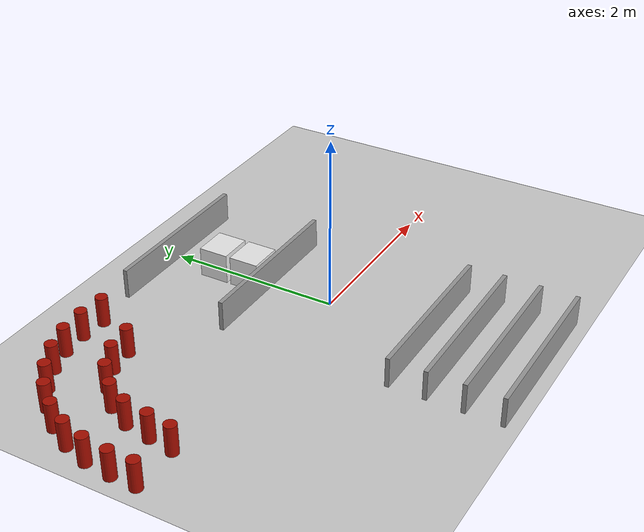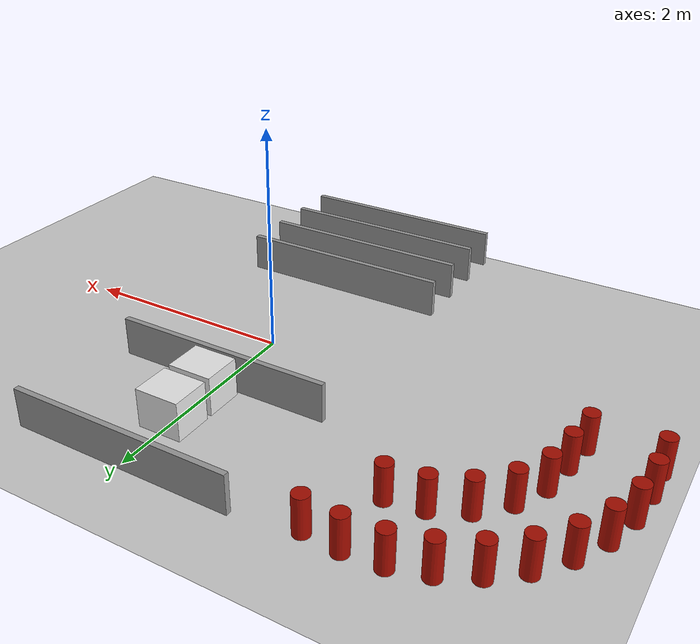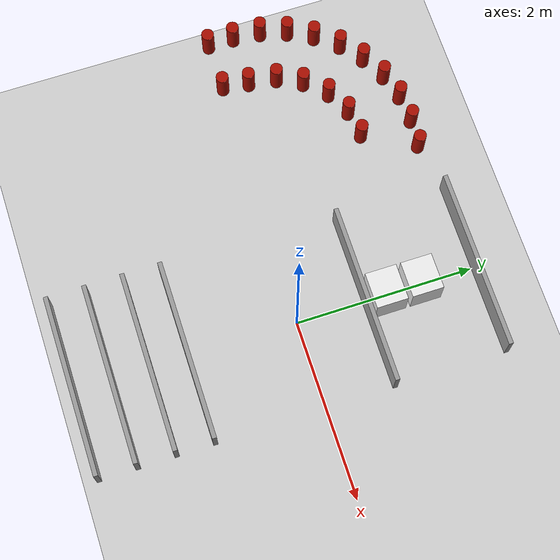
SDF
<?xml version="1.0" ?>
<sdf version="1.5">
  <world name="default">
    <include>
      <uri>model://sun</uri>
    </include>

    <include>
      <uri>model://limo_track_base</uri>
    </include>

    <model name="wall_1">
      <static>true</static>
      <link name="link">
        <collision name="collision"><geometry><box><size>2 0.05 0.35</size></box></geometry></collision>
        <visual name="visual"><geometry><box><size>2 0.05 0.35</size></box></geometry>
          <material><script><uri>file://media/materials/scripts/gazebo.material</uri><name>Gazebo/Grey</name></script></material>
        </visual>
      </link>
      <pose>0 -2.48 0.175 0 0 0</pose> </model>

    <model name="wall_2">
      <static>true</static>
      <link name="link">
        <collision name="collision"><geometry><box><size>2 0.05 0.35</size></box></geometry></collision>
        <visual name="visual"><geometry><box><size>2 0.05 0.35</size></box></geometry>
          <material><script><uri>file://media/materials/scripts/gazebo.material</uri><name>Gazebo/Grey</name></script></material>
        </visual>
      </link>
      <pose>0 -2.06 0.175 0 0 0</pose> </model>

    <model name="wall_3">
      <static>true</static>
      <link name="link">
        <collision name="collision"><geometry><box><size>2 0.05 0.35</size></box></geometry></collision>
        <visual name="visual"><geometry><box><size>2 0.05 0.35</size></box></geometry>
          <material><script><uri>file://media/materials/scripts/gazebo.material</uri><name>Gazebo/Grey</name></script></material>
        </visual>
      </link>
      <pose>0 -1.64 0.175 0 0 0</pose> </model>

    <model name="wall_4">
      <static>true</static>
      <link name="link">
        <collision name="collision"><geometry><box><size>2 0.05 0.35</size></box></geometry></collision>
        <visual name="visual"><geometry><box><size>2 0.05 0.35</size></box></geometry>
          <material><script><uri>file://media/materials/scripts/gazebo.material</uri><name>Gazebo/Grey</name></script></material>
        </visual>
      </link>
      <pose>0 -1.22 0.175 0 0 0</pose> </model>

    <model name="wall_5">
      <static>true</static>
      <link name="link">
        <collision name="collision"><geometry><box><size>2 0.05 0.35</size></box></geometry></collision>
        <visual name="visual"><geometry><box><size>2 0.05 0.35</size></box></geometry>
          <material><script><uri>file://media/materials/scripts/gazebo.material</uri><name>Gazebo/Grey</name></script></material>
        </visual>
      </link>
      <pose>0 0.77 0.175 0 0 0</pose> </model>

    <model name="wall_6">
      <static>true</static>
      <link name="link">
        <collision name="collision"><geometry><box><size>2 0.05 0.35</size></box></geometry></collision>
        <visual name="visual"><geometry><box><size>2 0.05 0.35</size></box></geometry>
          <material><script><uri>file://media/materials/scripts/gazebo.material</uri><name>Gazebo/Grey</name></script></material>
        </visual>
      </link>
      <pose>0 2.03 0.175 0 0 0</pose> </model>

    <model name="mission_box_1">
      <static>true</static>
      <link name="link">
        <collision name="collision"><geometry><box><size>0.4 0.35 0.35</size></box></geometry></collision>
        <visual name="visual"><geometry><box><size>0.4 0.35 0.35</size></box></geometry>
          <material><script><uri>file://media/materials/scripts/gazebo.material</uri><name>Gazebo/White</name></script></material>
        </visual>
      </link>
      <pose>0 1 0.175 0 0 0</pose> </model>

    <model name="mission_box_2">
      <static>true</static>
      <link name="link">
        <collision name="collision"><geometry><box><size>0.4 0.35 0.35</size></box></geometry></collision>
        <visual name="visual"><geometry><box><size>0.4 0.35 0.35</size></box></geometry>
          <material><script><uri>file://media/materials/scripts/gazebo.material</uri><name>Gazebo/White</name></script></material>
        </visual>
      </link>
      <pose>0 1.4 0.175 0 0 0</pose> </model>

    <model name="cone_1">
      <static>true</static>
      <link name="link">
        <collision name="collision"><geometry><cylinder><radius>0.07</radius><length>0.35</length></cylinder></geometry></collision>
        <visual name="visual"><geometry><cylinder><radius>0.07</radius><length>0.35</length></cylinder></geometry>
          <material><ambient>0.65 0.05 0 1</ambient><diffuse>0.65 0.05 0 1</diffuse></material>
        </visual>
      </link>
      <pose>-2.89 0.065 0.175 0 0 0</pose> </model>

    <model name="cone_2">
      <static>true</static>
      <link name="link">
        <collision name="collision"><geometry><cylinder><radius>0.07</radius><length>0.35</length></cylinder></geometry></collision>
        <visual name="visual"><geometry><cylinder><radius>0.07</radius><length>0.35</length></cylinder></geometry>
          <material><ambient>0.65 0.05 0 1</ambient><diffuse>0.65 0.05 0 1</diffuse></material>
        </visual>
      </link>
      <pose>-2.85 0.36 0.175 0 0 0</pose> </model>

    <model name="cone_3">
      <static>true</static>
      <link name="link">
        <collision name="collision"><geometry><cylinder><radius>0.07</radius><length>0.35</length></cylinder></geometry></collision>
        <visual name="visual"><geometry><cylinder><radius>0.07</radius><length>0.35</length></cylinder></geometry>
          <material><ambient>0.65 0.05 0 1</ambient><diffuse>0.65 0.05 0 1</diffuse></material>
        </visual>
      </link>
      <pose>-2.8 0.675 0.175 0 0 0</pose> </model>

    <model name="cone_4">
      <static>true</static>
      <link name="link">
        <collision name="collision"><geometry><cylinder><radius>0.07</radius><length>0.35</length></cylinder></geometry></collision>
        <visual name="visual"><geometry><cylinder><radius>0.07</radius><length>0.35</length></cylinder></geometry>
          <material><ambient>0.65 0.05 0 1</ambient><diffuse>0.65 0.05 0 1</diffuse></material>
        </visual>
      </link>
      <pose>-2.66 0.95 0.175 0 0 0</pose> </model>

    <model name="cone_5">
      <static>true</static>
      <link name="link">
        <collision name="collision"><geometry><cylinder><radius>0.07</radius><length>0.35</length></cylinder></geometry></collision>
        <visual name="visual"><geometry><cylinder><radius>0.07</radius><length>0.35</length></cylinder></geometry>
          <material><ambient>0.65 0.05 0 1</ambient><diffuse>0.65 0.05 0 1</diffuse></material>
        </visual>
      </link>
      <pose>-2.44 1.18 0.175 0 0 0</pose> </model>

    <model name="cone_6">
      <static>true</static>
      <link name="link">
        <collision name="collision"><geometry><cylinder><radius>0.07</radius><length>0.35</length></cylinder></geometry></collision>
        <visual name="visual"><geometry><cylinder><radius>0.07</radius><length>0.35</length></cylinder></geometry>
          <material><ambient>0.65 0.05 0 1</ambient><diffuse>0.65 0.05 0 1</diffuse></material>
        </visual>
      </link>
      <pose>-2.16 1.32 0.175 0 0 0</pose> </model>

    <model name="cone_7">
      <static>true</static>
      <link name="link">
        <collision name="collision"><geometry><cylinder><radius>0.07</radius><length>0.35</length></cylinder></geometry></collision>
        <visual name="visual"><geometry><cylinder><radius>0.07</radius><length>0.35</length></cylinder></geometry>
          <material><ambient>0.65 0.05 0 1</ambient><diffuse>0.65 0.05 0 1</diffuse></material>
        </visual>
      </link>
      <pose>-1.85 1.365 0.175 0 0 0</pose> </model>

    <model name="cone_8">
      <static>true</static>
      <link name="link">
        <collision name="collision"><geometry><cylinder><radius>0.07</radius><length>0.35</length></cylinder></geometry></collision>
        <visual name="visual"><geometry><cylinder><radius>0.07</radius><length>0.35</length></cylinder></geometry>
          <material><ambient>0.65 0.05 0 1</ambient><diffuse>0.65 0.05 0 1</diffuse></material>
        </visual>
      </link>
      <pose>-3.45 0.065 0.175 0 0 0</pose> </model>

    <model name="cone_9">
      <static>true</static>
      <link name="link">
        <collision name="collision"><geometry><cylinder><radius>0.07</radius><length>0.35</length></cylinder></geometry></collision>
        <visual name="visual"><geometry><cylinder><radius>0.07</radius><length>0.35</length></cylinder></geometry>
          <material><ambient>0.65 0.05 0 1</ambient><diffuse>0.65 0.05 0 1</diffuse></material>
        </visual>
      </link>
      <pose>-3.45 0.36 0.175 0 0 0</pose> </model>

    <model name="cone_10">
      <static>true</static>
      <link name="link">
        <collision name="collision"><geometry><cylinder><radius>0.07</radius><length>0.35</length></cylinder></geometry></collision>
        <visual name="visual"><geometry><cylinder><radius>0.07</radius><length>0.35</length></cylinder></geometry>
          <material><ambient>0.65 0.05 0 1</ambient><diffuse>0.65 0.05 0 1</diffuse></material>
        </visual>
      </link>
      <pose>-3.42 0.675 0.175 0 0 0</pose> </model>

    <model name="cone_11">
      <static>true</static>
      <link name="link">
        <collision name="collision"><geometry><cylinder><radius>0.07</radius><length>0.35</length></cylinder></geometry></collision>
        <visual name="visual"><geometry><cylinder><radius>0.07</radius><length>0.35</length></cylinder></geometry>
          <material><ambient>0.65 0.05 0 1</ambient><diffuse>0.65 0.05 0 1</diffuse></material>
        </visual>
      </link>
      <pose>-3.33 0.975 0.175 0 0 0</pose> </model>

    <model name="cone_12">
      <static>true</static>
      <link name="link">
        <collision name="collision"><geometry><cylinder><radius>0.07</radius><length>0.35</length></cylinder></geometry></collision>
        <visual name="visual"><geometry><cylinder><radius>0.07</radius><length>0.35</length></cylinder></geometry>
          <material><ambient>0.65 0.05 0 1</ambient><diffuse>0.65 0.05 0 1</diffuse></material>
        </visual>
      </link>
      <pose>-3.18 1.25 0.175 0 0 0</pose> </model>

    <model name="cone_13">
      <static>true</static>
      <link name="link">
        <collision name="collision"><geometry><cylinder><radius>0.07</radius><length>0.35</length></cylinder></geometry></collision>
        <visual name="visual"><geometry><cylinder><radius>0.07</radius><length>0.35</length></cylinder></geometry>
          <material><ambient>0.65 0.05 0 1</ambient><diffuse>0.65 0.05 0 1</diffuse></material>
        </visual>
      </link>
      <pose>-2.98 1.5 0.175 0 0 0</pose> </model>

    <model name="cone_14">
      <static>true</static>
      <link name="link">
        <collision name="collision"><geometry><cylinder><radius>0.07</radius><length>0.35</length></cylinder></geometry></collision>
        <visual name="visual"><geometry><cylinder><radius>0.07</radius><length>0.35</length></cylinder></geometry>
          <material><ambient>0.65 0.05 0 1</ambient><diffuse>0.65 0.05 0 1</diffuse></material>
        </visual>
      </link>
      <pose>-2.74 1.695 0.175 0 0 0</pose> </model>

    <model name="cone_15">
      <static>true</static>
      <link name="link">
        <collision name="collision"><geometry><cylinder><radius>0.07</radius><length>0.35</length></cylinder></geometry></collision>
        <visual name="visual"><geometry><cylinder><radius>0.07</radius><length>0.35</length></cylinder></geometry>
          <material><ambient>0.65 0.05 0 1</ambient><diffuse>0.65 0.05 0 1</diffuse></material>
        </visual>
      </link>
      <pose>-2.46 1.845 0.175 0 0 0</pose> </model>

    <model name="cone_16">
      <static>true</static>
      <link name="link">
        <collision name="collision"><geometry><cylinder><radius>0.07</radius><length>0.35</length></cylinder></geometry></collision>
        <visual name="visual"><geometry><cylinder><radius>0.07</radius><length>0.35</length></cylinder></geometry>
          <material><ambient>0.65 0.05 0 1</ambient><diffuse>0.65 0.05 0 1</diffuse></material>
        </visual>
      </link>
      <pose>-2.165 1.935 0.175 0 0 0</pose> </model>

    <model name="cone_17">
      <static>true</static>
      <link name="link">
        <collision name="collision"><geometry><cylinder><radius>0.07</radius><length>0.35</length></cylinder></geometry></collision>
        <visual name="visual"><geometry><cylinder><radius>0.07</radius><length>0.35</length></cylinder></geometry>
          <material><ambient>0.65 0.05 0 1</ambient><diffuse>0.65 0.05 0 1</diffuse></material>
        </visual>
      </link>
      <pose>-1.85 1.96 0.175 0 0 0</pose> </model>

    <model name="cone_18">
      <static>true</static>
      <link name="link">
        <collision name="collision"><geometry><cylinder><radius>0.07</radius><length>0.35</length></cylinder></geometry></collision>
        <visual name="visual"><geometry><cylinder><radius>0.07</radius><length>0.35</length></cylinder></geometry>
          <material><ambient>0.65 0.05 0 1</ambient><diffuse>0.65 0.05 0 1</diffuse></material>
        </visual>
      </link>
      <pose>-1.535 1.935 0.175 0 0 0</pose> </model>

    <physics type='ode'>
      <max_step_size>0.01</max_step_size>
      <real_time_factor>1</real_time_factor>
      <real_time_update_rate>100</real_time_update_rate>
      <gravity>0 0 -9.8</gravity>
    </physics>

  </world>
</sdf>

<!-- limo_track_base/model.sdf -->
<sdf version="1.6">
  <model name="limo_track_base">
    <static>true</static>
    <link name="link">
      <collision name="collision">
        <geometry>
          <plane>
            <normal>0 0 1</normal>
            <size>100 100</size>
          </plane>
        </geometry>
      </collision>
      <visual name="visual">
        <geometry>
          <plane>
            <normal>0 0 1</normal>
            <size>7.314 5.304</size> </plane>
        </geometry>
        <material>
          <script>
            <uri>model://limo_track_base/materials/scripts</uri>
            <uri>model://limo_track_base/materials/textures</uri>
            <name>LimoTrackBase/Ground</name> </script>
        </material>
      </visual>
    </link>
  </model>
</sdf>
